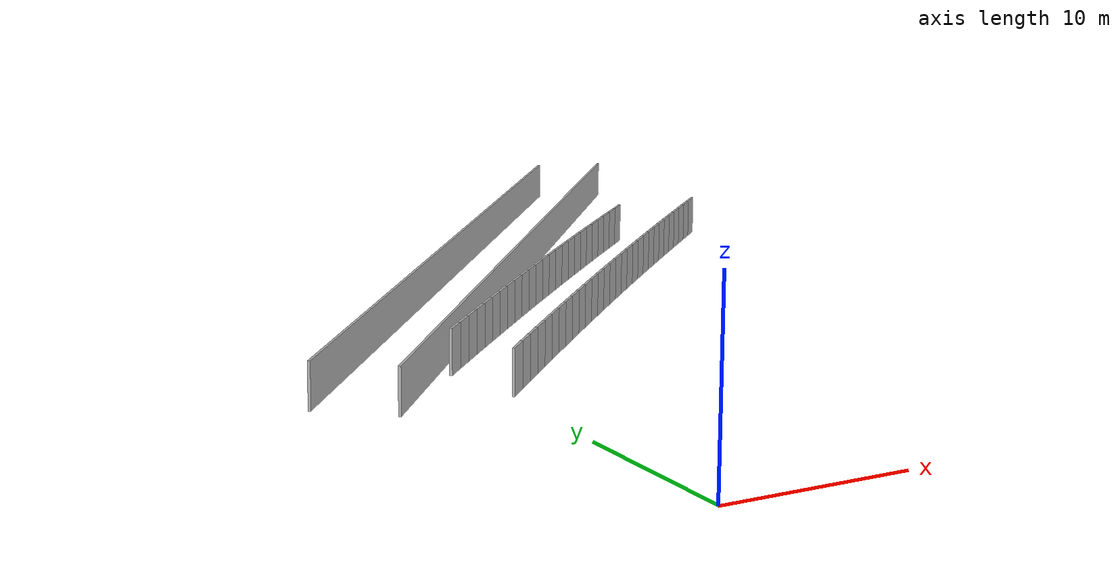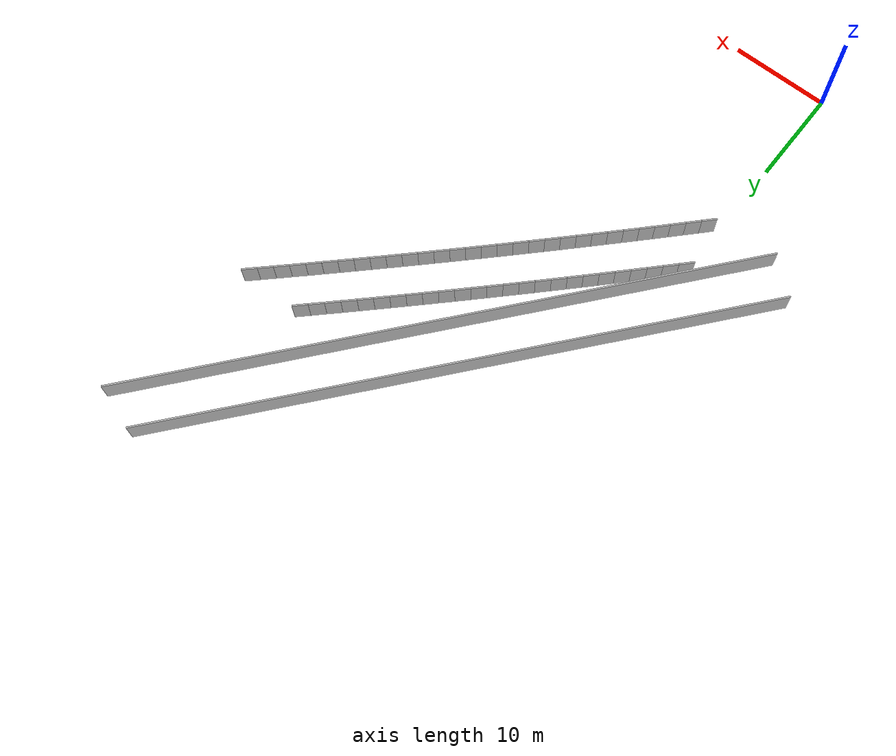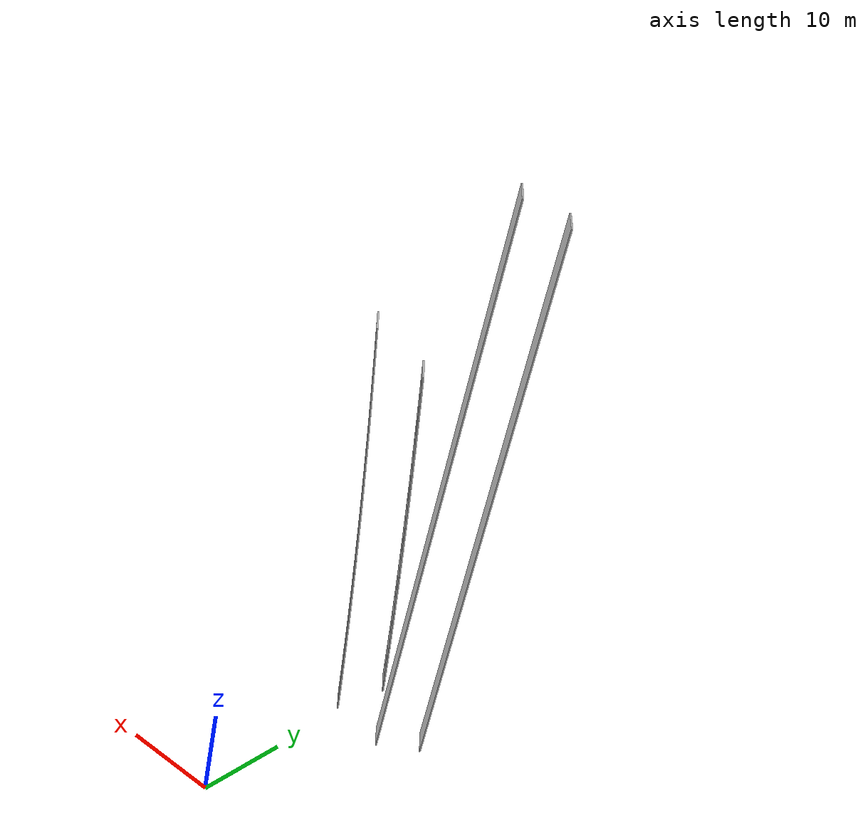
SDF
<?xml version="1.0" ?>
<sdf version="1.6">
  <model name="sps_1041">
    <pose frame="">0 0 0 0 -0 0</pose>
    <static>1</static>
    <self_collide>0</self_collide>
    <allow_auto_disable>0</allow_auto_disable>
    <link name="Wall216">
      <kinematic>0</kinematic>
      <gravity>1</gravity>
      <self_collide>0</self_collide>
      <collision name="collision">
        <geometry>
          <box>
            <size>61.3717 0.15 2.5</size>
          </box>
        </geometry>
        <pose frame="">0 0 0 0 -0 0</pose>
      </collision>
      <visual name="visual">
        <geometry>
          <box>
            <size>61.3717 0.15 2.5</size>
          </box>
        </geometry>
        <pose frame="">0 0 0 0 -0 0</pose>
        <cast_shadows>1</cast_shadows>
        <transparency>0.0</transparency>
      </visual>
      <pose frame="">10.3062 44.3538 1.25 0 0 -2.26727</pose>
    </link>
    <link name="Wall218">
      <kinematic>0</kinematic>
      <gravity>1</gravity>
      <self_collide>0</self_collide>
      <collision name="collision">
        <geometry>
          <box>
            <size>63.1801 0.15 2.5</size>
          </box>
        </geometry>
        <pose frame="">0 0 0 0 -0 0</pose>
      </collision>
      <visual name="visual">
        <geometry>
          <box>
            <size>63.1801 0.15 2.5</size>
          </box>
        </geometry>
        <pose frame="">0 0 0 0 -0 0</pose>
        <cast_shadows>1</cast_shadows>
        <transparency>0.0</transparency>
      </visual>
      <pose frame="">14.2568 42.1703 1.25 0 -0 0.876505</pose>
    </link>
    <link name="Wall3343">
      <kinematic>0</kinematic>
      <gravity>1</gravity>
      <self_collide>0</self_collide>
      <collision name="collision">
        <geometry>
          <box>
            <size>1.49649 0.15 2.5</size>
          </box>
        </geometry>
        <pose frame="">0 0 0 0 -0 0</pose>
      </collision>
      <visual name="visual">
        <geometry>
          <box>
            <size>1.49649 0.15 2.5</size>
          </box>
        </geometry>
        <pose frame="">0 0 0 0 -0 0</pose>
        <cast_shadows>1</cast_shadows>
        <transparency>0.0</transparency>
      </visual>
      <pose frame="">31.7778 49.5212 1.25 0 0 -2.38189</pose>
    </link>
    <link name="Wall3344">
      <kinematic>0</kinematic>
      <gravity>1</gravity>
      <self_collide>0</self_collide>
      <collision name="collision">
        <geometry>
          <box>
            <size>1.49651 0.15 2.5</size>
          </box>
        </geometry>
        <pose frame="">0 0 0 0 -0 0</pose>
      </collision>
      <visual name="visual">
        <geometry>
          <box>
            <size>1.49651 0.15 2.5</size>
          </box>
        </geometry>
        <pose frame="">0 0 0 0 -0 0</pose>
        <cast_shadows>1</cast_shadows>
        <transparency>0.0</transparency>
      </visual>
      <pose frame="">30.6937 48.4896 1.25 0 0 -2.3801</pose>
    </link>
    <link name="Wall3345">
      <kinematic>0</kinematic>
      <gravity>1</gravity>
      <self_collide>0</self_collide>
      <collision name="collision">
        <geometry>
          <box>
            <size>1.49659 0.15 2.5</size>
          </box>
        </geometry>
        <pose frame="">0 0 0 0 -0 0</pose>
      </collision>
      <visual name="visual">
        <geometry>
          <box>
            <size>1.49659 0.15 2.5</size>
          </box>
        </geometry>
        <pose frame="">0 0 0 0 -0 0</pose>
        <cast_shadows>1</cast_shadows>
        <transparency>0.0</transparency>
      </visual>
      <pose frame="">29.6112 47.4562 1.25 0 0 -2.37869</pose>
    </link>
    <link name="Wall3346">
      <kinematic>0</kinematic>
      <gravity>1</gravity>
      <self_collide>0</self_collide>
      <collision name="collision">
        <geometry>
          <box>
            <size>1.49645 0.15 2.5</size>
          </box>
        </geometry>
        <pose frame="">0 0 0 0 -0 0</pose>
      </collision>
      <visual name="visual">
        <geometry>
          <box>
            <size>1.49645 0.15 2.5</size>
          </box>
        </geometry>
        <pose frame="">0 0 0 0 -0 0</pose>
        <cast_shadows>1</cast_shadows>
        <transparency>0.0</transparency>
      </visual>
      <pose frame="">28.5304 46.4211 1.25 0 0 -2.3769</pose>
    </link>
    <link name="Wall3347">
      <kinematic>0</kinematic>
      <gravity>1</gravity>
      <self_collide>0</self_collide>
      <collision name="collision">
        <geometry>
          <box>
            <size>1.49649 0.15 2.5</size>
          </box>
        </geometry>
        <pose frame="">0 0 0 0 -0 0</pose>
      </collision>
      <visual name="visual">
        <geometry>
          <box>
            <size>1.49649 0.15 2.5</size>
          </box>
        </geometry>
        <pose frame="">0 0 0 0 -0 0</pose>
        <cast_shadows>1</cast_shadows>
        <transparency>0.0</transparency>
      </visual>
      <pose frame="">27.4513 45.3843 1.25 0 0 -2.37546</pose>
    </link>
    <link name="Wall3348">
      <kinematic>0</kinematic>
      <gravity>1</gravity>
      <self_collide>0</self_collide>
      <collision name="collision">
        <geometry>
          <box>
            <size>1.49666 0.15 2.5</size>
          </box>
        </geometry>
        <pose frame="">0 0 0 0 -0 0</pose>
      </collision>
      <visual name="visual">
        <geometry>
          <box>
            <size>1.49666 0.15 2.5</size>
          </box>
        </geometry>
        <pose frame="">0 0 0 0 -0 0</pose>
        <cast_shadows>1</cast_shadows>
        <transparency>0.0</transparency>
      </visual>
      <pose frame="">26.3736 44.3458 1.25 0 0 -2.37387</pose>
    </link>
    <link name="Wall3349">
      <kinematic>0</kinematic>
      <gravity>1</gravity>
      <self_collide>0</self_collide>
      <collision name="collision">
        <geometry>
          <box>
            <size>1.49636 0.15 2.5</size>
          </box>
        </geometry>
        <pose frame="">0 0 0 0 -0 0</pose>
      </collision>
      <visual name="visual">
        <geometry>
          <box>
            <size>1.49636 0.15 2.5</size>
          </box>
        </geometry>
        <pose frame="">0 0 0 0 -0 0</pose>
        <cast_shadows>1</cast_shadows>
        <transparency>0.0</transparency>
      </visual>
      <pose frame="">25.2978 43.3056 1.25 0 0 -2.37226</pose>
    </link>
    <link name="Wall3350">
      <kinematic>0</kinematic>
      <gravity>1</gravity>
      <self_collide>0</self_collide>
      <collision name="collision">
        <geometry>
          <box>
            <size>1.49659 0.15 2.5</size>
          </box>
        </geometry>
        <pose frame="">0 0 0 0 -0 0</pose>
      </collision>
      <visual name="visual">
        <geometry>
          <box>
            <size>1.49659 0.15 2.5</size>
          </box>
        </geometry>
        <pose frame="">0 0 0 0 -0 0</pose>
        <cast_shadows>1</cast_shadows>
        <transparency>0.0</transparency>
      </visual>
      <pose frame="">24.2236 42.2637 1.25 0 0 -2.37064</pose>
    </link>
    <link name="Wall3351">
      <kinematic>0</kinematic>
      <gravity>1</gravity>
      <self_collide>0</self_collide>
      <collision name="collision">
        <geometry>
          <box>
            <size>1.49647 0.15 2.5</size>
          </box>
        </geometry>
        <pose frame="">0 0 0 0 -0 0</pose>
      </collision>
      <visual name="visual">
        <geometry>
          <box>
            <size>1.49647 0.15 2.5</size>
          </box>
        </geometry>
        <pose frame="">0 0 0 0 -0 0</pose>
        <cast_shadows>1</cast_shadows>
        <transparency>0.0</transparency>
      </visual>
      <pose frame="">23.151 41.2201 1.25 0 0 -2.36914</pose>
    </link>
    <link name="Wall3352">
      <kinematic>0</kinematic>
      <gravity>1</gravity>
      <self_collide>0</self_collide>
      <collision name="collision">
        <geometry>
          <box>
            <size>1.49648 0.15 2.5</size>
          </box>
        </geometry>
        <pose frame="">0 0 0 0 -0 0</pose>
      </collision>
      <visual name="visual">
        <geometry>
          <box>
            <size>1.49648 0.15 2.5</size>
          </box>
        </geometry>
        <pose frame="">0 0 0 0 -0 0</pose>
        <cast_shadows>1</cast_shadows>
        <transparency>0.0</transparency>
      </visual>
      <pose frame="">22.0801 40.1748 1.25 0 0 -2.36744</pose>
    </link>
    <link name="Wall3353">
      <kinematic>0</kinematic>
      <gravity>1</gravity>
      <self_collide>0</self_collide>
      <collision name="collision">
        <geometry>
          <box>
            <size>1.49646 0.15 2.5</size>
          </box>
        </geometry>
        <pose frame="">0 0 0 0 -0 0</pose>
      </collision>
      <visual name="visual">
        <geometry>
          <box>
            <size>1.49646 0.15 2.5</size>
          </box>
        </geometry>
        <pose frame="">0 0 0 0 -0 0</pose>
        <cast_shadows>1</cast_shadows>
        <transparency>0.0</transparency>
      </visual>
      <pose frame="">21.0109 39.1278 1.25 0 0 -2.36594</pose>
    </link>
    <link name="Wall3354">
      <kinematic>0</kinematic>
      <gravity>1</gravity>
      <self_collide>0</self_collide>
      <collision name="collision">
        <geometry>
          <box>
            <size>1.49657 0.15 2.5</size>
          </box>
        </geometry>
        <pose frame="">0 0 0 0 -0 0</pose>
      </collision>
      <visual name="visual">
        <geometry>
          <box>
            <size>1.49657 0.15 2.5</size>
          </box>
        </geometry>
        <pose frame="">0 0 0 0 -0 0</pose>
        <cast_shadows>1</cast_shadows>
        <transparency>0.0</transparency>
      </visual>
      <pose frame="">19.9433 38.0791 1.25 0 0 -2.3643</pose>
    </link>
    <link name="Wall3355">
      <kinematic>0</kinematic>
      <gravity>1</gravity>
      <self_collide>0</self_collide>
      <collision name="collision">
        <geometry>
          <box>
            <size>1.49659 0.15 2.5</size>
          </box>
        </geometry>
        <pose frame="">0 0 0 0 -0 0</pose>
      </collision>
      <visual name="visual">
        <geometry>
          <box>
            <size>1.49659 0.15 2.5</size>
          </box>
        </geometry>
        <pose frame="">0 0 0 0 -0 0</pose>
        <cast_shadows>1</cast_shadows>
        <transparency>0.0</transparency>
      </visual>
      <pose frame="">18.8773 37.0287 1.25 0 0 -2.36283</pose>
    </link>
    <link name="Wall3356">
      <kinematic>0</kinematic>
      <gravity>1</gravity>
      <self_collide>0</self_collide>
      <collision name="collision">
        <geometry>
          <box>
            <size>1.49649 0.15 2.5</size>
          </box>
        </geometry>
        <pose frame="">0 0 0 0 -0 0</pose>
      </collision>
      <visual name="visual">
        <geometry>
          <box>
            <size>1.49649 0.15 2.5</size>
          </box>
        </geometry>
        <pose frame="">0 0 0 0 -0 0</pose>
        <cast_shadows>1</cast_shadows>
        <transparency>0.0</transparency>
      </visual>
      <pose frame="">17.8129 35.9766 1.25 0 0 -2.3611</pose>
    </link>
    <link name="Wall3357">
      <kinematic>0</kinematic>
      <gravity>1</gravity>
      <self_collide>0</self_collide>
      <collision name="collision">
        <geometry>
          <box>
            <size>1.49653 0.15 2.5</size>
          </box>
        </geometry>
        <pose frame="">0 0 0 0 -0 0</pose>
      </collision>
      <visual name="visual">
        <geometry>
          <box>
            <size>1.49653 0.15 2.5</size>
          </box>
        </geometry>
        <pose frame="">0 0 0 0 -0 0</pose>
        <cast_shadows>1</cast_shadows>
        <transparency>0.0</transparency>
      </visual>
      <pose frame="">16.7504 34.9228 1.25 0 0 -2.35963</pose>
    </link>
    <link name="Wall3358">
      <kinematic>0</kinematic>
      <gravity>1</gravity>
      <self_collide>0</self_collide>
      <collision name="collision">
        <geometry>
          <box>
            <size>1.49639 0.15 2.5</size>
          </box>
        </geometry>
        <pose frame="">0 0 0 0 -0 0</pose>
      </collision>
      <visual name="visual">
        <geometry>
          <box>
            <size>1.49639 0.15 2.5</size>
          </box>
        </geometry>
        <pose frame="">0 0 0 0 -0 0</pose>
        <cast_shadows>1</cast_shadows>
        <transparency>0.0</transparency>
      </visual>
      <pose frame="">15.6894 33.8674 1.25 0 0 -2.35798</pose>
    </link>
    <link name="Wall3359">
      <kinematic>0</kinematic>
      <gravity>1</gravity>
      <self_collide>0</self_collide>
      <collision name="collision">
        <geometry>
          <box>
            <size>1.49656 0.15 2.5</size>
          </box>
        </geometry>
        <pose frame="">0 0 0 0 -0 0</pose>
      </collision>
      <visual name="visual">
        <geometry>
          <box>
            <size>1.49656 0.15 2.5</size>
          </box>
        </geometry>
        <pose frame="">0 0 0 0 -0 0</pose>
        <cast_shadows>1</cast_shadows>
        <transparency>0.0</transparency>
      </visual>
      <pose frame="">14.6302 32.8103 1.25 0 0 -2.35637</pose>
    </link>
    <link name="Wall3360">
      <kinematic>0</kinematic>
      <gravity>1</gravity>
      <self_collide>0</self_collide>
      <collision name="collision">
        <geometry>
          <box>
            <size>1.49635 0.15 2.5</size>
          </box>
        </geometry>
        <pose frame="">0 0 0 0 -0 0</pose>
      </collision>
      <visual name="visual">
        <geometry>
          <box>
            <size>1.49635 0.15 2.5</size>
          </box>
        </geometry>
        <pose frame="">0 0 0 0 -0 0</pose>
        <cast_shadows>1</cast_shadows>
        <transparency>0.0</transparency>
      </visual>
      <pose frame="">13.5727 31.7516 1.25 0 0 -2.35495</pose>
    </link>
    <link name="Wall3361">
      <kinematic>0</kinematic>
      <gravity>1</gravity>
      <self_collide>0</self_collide>
      <collision name="collision">
        <geometry>
          <box>
            <size>1.4967 0.15 2.5</size>
          </box>
        </geometry>
        <pose frame="">0 0 0 0 -0 0</pose>
      </collision>
      <visual name="visual">
        <geometry>
          <box>
            <size>1.4967 0.15 2.5</size>
          </box>
        </geometry>
        <pose frame="">0 0 0 0 -0 0</pose>
        <cast_shadows>1</cast_shadows>
        <transparency>0.0</transparency>
      </visual>
      <pose frame="">12.5167 30.6912 1.25 0 0 -2.35328</pose>
    </link>
    <link name="Wall3362">
      <kinematic>0</kinematic>
      <gravity>1</gravity>
      <self_collide>0</self_collide>
      <collision name="collision">
        <geometry>
          <box>
            <size>1.4964 0.15 2.5</size>
          </box>
        </geometry>
        <pose frame="">0 0 0 0 -0 0</pose>
      </collision>
      <visual name="visual">
        <geometry>
          <box>
            <size>1.4964 0.15 2.5</size>
          </box>
        </geometry>
        <pose frame="">0 0 0 0 -0 0</pose>
        <cast_shadows>1</cast_shadows>
        <transparency>0.0</transparency>
      </visual>
      <pose frame="">11.4623 29.6291 1.25 0 0 -2.35175</pose>
    </link>
    <link name="Wall3363">
      <kinematic>0</kinematic>
      <gravity>1</gravity>
      <self_collide>0</self_collide>
      <collision name="collision">
        <geometry>
          <box>
            <size>1.49668 0.15 2.5</size>
          </box>
        </geometry>
        <pose frame="">0 0 0 0 -0 0</pose>
      </collision>
      <visual name="visual">
        <geometry>
          <box>
            <size>1.49668 0.15 2.5</size>
          </box>
        </geometry>
        <pose frame="">0 0 0 0 -0 0</pose>
        <cast_shadows>1</cast_shadows>
        <transparency>0.0</transparency>
      </visual>
      <pose frame="">10.4098 28.5652 1.25 0 0 -2.34985</pose>
    </link>
    <link name="Wall3364">
      <kinematic>0</kinematic>
      <gravity>1</gravity>
      <self_collide>0</self_collide>
      <collision name="collision">
        <geometry>
          <box>
            <size>1.49652 0.15 2.5</size>
          </box>
        </geometry>
        <pose frame="">0 0 0 0 -0 0</pose>
      </collision>
      <visual name="visual">
        <geometry>
          <box>
            <size>1.49652 0.15 2.5</size>
          </box>
        </geometry>
        <pose frame="">0 0 0 0 -0 0</pose>
        <cast_shadows>1</cast_shadows>
        <transparency>0.0</transparency>
      </visual>
      <pose frame="">9.35906 27.4995 1.25 0 0 -2.34847</pose>
    </link>
    <link name="Wall3365">
      <kinematic>0</kinematic>
      <gravity>1</gravity>
      <self_collide>0</self_collide>
      <collision name="collision">
        <geometry>
          <box>
            <size>1.49662 0.15 2.5</size>
          </box>
        </geometry>
        <pose frame="">0 0 0 0 -0 0</pose>
      </collision>
      <visual name="visual">
        <geometry>
          <box>
            <size>1.49662 0.15 2.5</size>
          </box>
        </geometry>
        <pose frame="">0 0 0 0 -0 0</pose>
        <cast_shadows>1</cast_shadows>
        <transparency>0.0</transparency>
      </visual>
      <pose frame="">8.30987 26.4323 1.25 0 0 -2.34691</pose>
    </link>
    <link name="Wall3366">
      <kinematic>0</kinematic>
      <gravity>1</gravity>
      <self_collide>0</self_collide>
      <collision name="collision">
        <geometry>
          <box>
            <size>1.49634 0.15 2.5</size>
          </box>
        </geometry>
        <pose frame="">0 0 0 0 -0 0</pose>
      </collision>
      <visual name="visual">
        <geometry>
          <box>
            <size>1.49634 0.15 2.5</size>
          </box>
        </geometry>
        <pose frame="">0 0 0 0 -0 0</pose>
        <cast_shadows>1</cast_shadows>
        <transparency>0.0</transparency>
      </visual>
      <pose frame="">7.26235 25.3636 1.25 0 0 -2.34544</pose>
    </link>
    <link name="Wall3367">
      <kinematic>0</kinematic>
      <gravity>1</gravity>
      <self_collide>0</self_collide>
      <collision name="collision">
        <geometry>
          <box>
            <size>1.49646 0.15 2.5</size>
          </box>
        </geometry>
        <pose frame="">0 0 0 0 -0 0</pose>
      </collision>
      <visual name="visual">
        <geometry>
          <box>
            <size>1.49646 0.15 2.5</size>
          </box>
        </geometry>
        <pose frame="">0 0 0 0 -0 0</pose>
        <cast_shadows>1</cast_shadows>
        <transparency>0.0</transparency>
      </visual>
      <pose frame="">6.21654 24.2933 1.25 0 0 -2.34382</pose>
    </link>
    <link name="Wall3368">
      <kinematic>0</kinematic>
      <gravity>1</gravity>
      <self_collide>0</self_collide>
      <collision name="collision">
        <geometry>
          <box>
            <size>1.49654 0.15 2.5</size>
          </box>
        </geometry>
        <pose frame="">0 0 0 0 -0 0</pose>
      </collision>
      <visual name="visual">
        <geometry>
          <box>
            <size>1.49654 0.15 2.5</size>
          </box>
        </geometry>
        <pose frame="">0 0 0 0 -0 0</pose>
        <cast_shadows>1</cast_shadows>
        <transparency>0.0</transparency>
      </visual>
      <pose frame="">5.17245 23.2212 1.25 0 0 -2.34212</pose>
    </link>
    <link name="Wall3369">
      <kinematic>0</kinematic>
      <gravity>1</gravity>
      <self_collide>0</self_collide>
      <collision name="collision">
        <geometry>
          <box>
            <size>1.49627 0.15 2.5</size>
          </box>
        </geometry>
        <pose frame="">0 0 0 0 -0 0</pose>
      </collision>
      <visual name="visual">
        <geometry>
          <box>
            <size>1.49627 0.15 2.5</size>
          </box>
        </geometry>
        <pose frame="">0 0 0 0 -0 0</pose>
        <cast_shadows>1</cast_shadows>
        <transparency>0.0</transparency>
      </visual>
      <pose frame="">4.13015 22.1475 1.25 0 0 -2.34059</pose>
    </link>
    <link name="Wall3370">
      <kinematic>0</kinematic>
      <gravity>1</gravity>
      <self_collide>0</self_collide>
      <collision name="collision">
        <geometry>
          <box>
            <size>1.49648 0.15 2.5</size>
          </box>
        </geometry>
        <pose frame="">0 0 0 0 -0 0</pose>
      </collision>
      <visual name="visual">
        <geometry>
          <box>
            <size>1.49648 0.15 2.5</size>
          </box>
        </geometry>
        <pose frame="">0 0 0 0 -0 0</pose>
        <cast_shadows>1</cast_shadows>
        <transparency>0.0</transparency>
      </visual>
      <pose frame="">3.08956 21.0722 1.25 0 0 -2.33898</pose>
    </link>
    <link name="Wall3371">
      <kinematic>0</kinematic>
      <gravity>1</gravity>
      <self_collide>0</self_collide>
      <collision name="collision">
        <geometry>
          <box>
            <size>1.49665 0.15 2.5</size>
          </box>
        </geometry>
        <pose frame="">0 0 0 0 -0 0</pose>
      </collision>
      <visual name="visual">
        <geometry>
          <box>
            <size>1.49665 0.15 2.5</size>
          </box>
        </geometry>
        <pose frame="">0 0 0 0 -0 0</pose>
        <cast_shadows>1</cast_shadows>
        <transparency>0.0</transparency>
      </visual>
      <pose frame="">2.05056 19.9951 1.25 0 0 -2.33739</pose>
    </link>
    <link name="Wall3372">
      <kinematic>0</kinematic>
      <gravity>1</gravity>
      <self_collide>0</self_collide>
      <collision name="collision">
        <geometry>
          <box>
            <size>1.49653 0.15 2.5</size>
          </box>
        </geometry>
        <pose frame="">0 0 0 0 -0 0</pose>
      </collision>
      <visual name="visual">
        <geometry>
          <box>
            <size>1.49653 0.15 2.5</size>
          </box>
        </geometry>
        <pose frame="">0 0 0 0 -0 0</pose>
        <cast_shadows>1</cast_shadows>
        <transparency>0.0</transparency>
      </visual>
      <pose frame="">1.01327 18.9163 1.25 0 0 -2.33578</pose>
    </link>
    <link name="Wall5957">
      <kinematic>0</kinematic>
      <gravity>1</gravity>
      <self_collide>0</self_collide>
      <collision name="collision">
        <geometry>
          <box>
            <size>1.5031 0.15 2.5</size>
          </box>
        </geometry>
        <pose frame="">0 0 0 0 -0 0</pose>
      </collision>
      <visual name="visual">
        <geometry>
          <box>
            <size>1.5031 0.15 2.5</size>
          </box>
        </geometry>
        <pose frame="">0 0 0 0 -0 0</pose>
        <cast_shadows>1</cast_shadows>
        <transparency>0.0</transparency>
      </visual>
      <pose frame="">25.6543 49.3987 1.25 0 0 -2.3771</pose>
    </link>
    <link name="Wall5958">
      <kinematic>0</kinematic>
      <gravity>1</gravity>
      <self_collide>0</self_collide>
      <collision name="collision">
        <geometry>
          <box>
            <size>1.50301 0.15 2.5</size>
          </box>
        </geometry>
        <pose frame="">0 0 0 0 -0 0</pose>
      </collision>
      <visual name="visual">
        <geometry>
          <box>
            <size>1.50301 0.15 2.5</size>
          </box>
        </geometry>
        <pose frame="">0 0 0 0 -0 0</pose>
        <cast_shadows>1</cast_shadows>
        <transparency>0.0</transparency>
      </visual>
      <pose frame="">24.5703 48.3574 1.25 0 0 -2.37541</pose>
    </link>
    <link name="Wall5959">
      <kinematic>0</kinematic>
      <gravity>1</gravity>
      <self_collide>0</self_collide>
      <collision name="collision">
        <geometry>
          <box>
            <size>1.50327 0.15 2.5</size>
          </box>
        </geometry>
        <pose frame="">0 0 0 0 -0 0</pose>
      </collision>
      <visual name="visual">
        <geometry>
          <box>
            <size>1.50327 0.15 2.5</size>
          </box>
        </geometry>
        <pose frame="">0 0 0 0 -0 0</pose>
        <cast_shadows>1</cast_shadows>
        <transparency>0.0</transparency>
      </visual>
      <pose frame="">23.488 47.3143 1.25 0 0 -2.37388</pose>
    </link>
    <link name="Wall5960">
      <kinematic>0</kinematic>
      <gravity>1</gravity>
      <self_collide>0</self_collide>
      <collision name="collision">
        <geometry>
          <box>
            <size>1.50306 0.15 2.5</size>
          </box>
        </geometry>
        <pose frame="">0 0 0 0 -0 0</pose>
      </collision>
      <visual name="visual">
        <geometry>
          <box>
            <size>1.50306 0.15 2.5</size>
          </box>
        </geometry>
        <pose frame="">0 0 0 0 -0 0</pose>
        <cast_shadows>1</cast_shadows>
        <transparency>0.0</transparency>
      </visual>
      <pose frame="">22.4073 46.2695 1.25 0 0 -2.37227</pose>
    </link>
    <link name="Wall5961">
      <kinematic>0</kinematic>
      <gravity>1</gravity>
      <self_collide>0</self_collide>
      <collision name="collision">
        <geometry>
          <box>
            <size>1.50306 0.15 2.5</size>
          </box>
        </geometry>
        <pose frame="">0 0 0 0 -0 0</pose>
      </collision>
      <visual name="visual">
        <geometry>
          <box>
            <size>1.50306 0.15 2.5</size>
          </box>
        </geometry>
        <pose frame="">0 0 0 0 -0 0</pose>
        <cast_shadows>1</cast_shadows>
        <transparency>0.0</transparency>
      </visual>
      <pose frame="">21.3285 45.223 1.25 0 0 -2.37058</pose>
    </link>
    <link name="Wall5962">
      <kinematic>0</kinematic>
      <gravity>1</gravity>
      <self_collide>0</self_collide>
      <collision name="collision">
        <geometry>
          <box>
            <size>1.50303 0.15 2.5</size>
          </box>
        </geometry>
        <pose frame="">0 0 0 0 -0 0</pose>
      </collision>
      <visual name="visual">
        <geometry>
          <box>
            <size>1.50303 0.15 2.5</size>
          </box>
        </geometry>
        <pose frame="">0 0 0 0 -0 0</pose>
        <cast_shadows>1</cast_shadows>
        <transparency>0.0</transparency>
      </visual>
      <pose frame="">20.2512 44.1748 1.25 0 0 -2.36909</pose>
    </link>
    <link name="Wall5963">
      <kinematic>0</kinematic>
      <gravity>1</gravity>
      <self_collide>0</self_collide>
      <collision name="collision">
        <geometry>
          <box>
            <size>1.50309 0.15 2.5</size>
          </box>
        </geometry>
        <pose frame="">0 0 0 0 -0 0</pose>
      </collision>
      <visual name="visual">
        <geometry>
          <box>
            <size>1.50309 0.15 2.5</size>
          </box>
        </geometry>
        <pose frame="">0 0 0 0 -0 0</pose>
        <cast_shadows>1</cast_shadows>
        <transparency>0.0</transparency>
      </visual>
      <pose frame="">19.1757 43.1249 1.25 0 0 -2.36748</pose>
    </link>
    <link name="Wall5964">
      <kinematic>0</kinematic>
      <gravity>1</gravity>
      <self_collide>0</self_collide>
      <collision name="collision">
        <geometry>
          <box>
            <size>1.50311 0.15 2.5</size>
          </box>
        </geometry>
        <pose frame="">0 0 0 0 -0 0</pose>
      </collision>
      <visual name="visual">
        <geometry>
          <box>
            <size>1.50311 0.15 2.5</size>
          </box>
        </geometry>
        <pose frame="">0 0 0 0 -0 0</pose>
        <cast_shadows>1</cast_shadows>
        <transparency>0.0</transparency>
      </visual>
      <pose frame="">18.1017 42.0733 1.25 0 0 -2.36596</pose>
    </link>
    <link name="Wall5965">
      <kinematic>0</kinematic>
      <gravity>1</gravity>
      <self_collide>0</self_collide>
      <collision name="collision">
        <geometry>
          <box>
            <size>1.50308 0.15 2.5</size>
          </box>
        </geometry>
        <pose frame="">0 0 0 0 -0 0</pose>
      </collision>
      <visual name="visual">
        <geometry>
          <box>
            <size>1.50308 0.15 2.5</size>
          </box>
        </geometry>
        <pose frame="">0 0 0 0 -0 0</pose>
        <cast_shadows>1</cast_shadows>
        <transparency>0.0</transparency>
      </visual>
      <pose frame="">17.0294 41.02 1.25 0 0 -2.36429</pose>
    </link>
    <link name="Wall5966">
      <kinematic>0</kinematic>
      <gravity>1</gravity>
      <self_collide>0</self_collide>
      <collision name="collision">
        <geometry>
          <box>
            <size>1.50307 0.15 2.5</size>
          </box>
        </geometry>
        <pose frame="">0 0 0 0 -0 0</pose>
      </collision>
      <visual name="visual">
        <geometry>
          <box>
            <size>1.50307 0.15 2.5</size>
          </box>
        </geometry>
        <pose frame="">0 0 0 0 -0 0</pose>
        <cast_shadows>1</cast_shadows>
        <transparency>0.0</transparency>
      </visual>
      <pose frame="">15.9588 39.965 1.25 0 0 -2.3628</pose>
    </link>
    <link name="Wall5967">
      <kinematic>0</kinematic>
      <gravity>1</gravity>
      <self_collide>0</self_collide>
      <collision name="collision">
        <geometry>
          <box>
            <size>1.50318 0.15 2.5</size>
          </box>
        </geometry>
        <pose frame="">0 0 0 0 -0 0</pose>
      </collision>
      <visual name="visual">
        <geometry>
          <box>
            <size>1.50318 0.15 2.5</size>
          </box>
        </geometry>
        <pose frame="">0 0 0 0 -0 0</pose>
        <cast_shadows>1</cast_shadows>
        <transparency>0.0</transparency>
      </visual>
      <pose frame="">14.8898 38.9083 1.25 0 0 -2.36116</pose>
    </link>
    <link name="Wall5968">
      <kinematic>0</kinematic>
      <gravity>1</gravity>
      <self_collide>0</self_collide>
      <collision name="collision">
        <geometry>
          <box>
            <size>1.50304 0.15 2.5</size>
          </box>
        </geometry>
        <pose frame="">0 0 0 0 -0 0</pose>
      </collision>
      <visual name="visual">
        <geometry>
          <box>
            <size>1.50304 0.15 2.5</size>
          </box>
        </geometry>
        <pose frame="">0 0 0 0 -0 0</pose>
        <cast_shadows>1</cast_shadows>
        <transparency>0.0</transparency>
      </visual>
      <pose frame="">13.8225 37.8499 1.25 0 0 -2.35958</pose>
    </link>
    <link name="Wall5969">
      <kinematic>0</kinematic>
      <gravity>1</gravity>
      <self_collide>0</self_collide>
      <collision name="collision">
        <geometry>
          <box>
            <size>1.50317 0.15 2.5</size>
          </box>
        </geometry>
        <pose frame="">0 0 0 0 -0 0</pose>
      </collision>
      <visual name="visual">
        <geometry>
          <box>
            <size>1.50317 0.15 2.5</size>
          </box>
        </geometry>
        <pose frame="">0 0 0 0 -0 0</pose>
        <cast_shadows>1</cast_shadows>
        <transparency>0.0</transparency>
      </visual>
      <pose frame="">12.7569 36.7898 1.25 0 0 -2.358</pose>
    </link>
    <link name="Wall5970">
      <kinematic>0</kinematic>
      <gravity>1</gravity>
      <self_collide>0</self_collide>
      <collision name="collision">
        <geometry>
          <box>
            <size>1.50303 0.15 2.5</size>
          </box>
        </geometry>
        <pose frame="">0 0 0 0 -0 0</pose>
      </collision>
      <visual name="visual">
        <geometry>
          <box>
            <size>1.50303 0.15 2.5</size>
          </box>
        </geometry>
        <pose frame="">0 0 0 0 -0 0</pose>
        <cast_shadows>1</cast_shadows>
        <transparency>0.0</transparency>
      </visual>
      <pose frame="">11.693 35.728 1.25 0 0 -2.35637</pose>
    </link>
    <link name="Wall5971">
      <kinematic>0</kinematic>
      <gravity>1</gravity>
      <self_collide>0</self_collide>
      <collision name="collision">
        <geometry>
          <box>
            <size>1.50316 0.15 2.5</size>
          </box>
        </geometry>
        <pose frame="">0 0 0 0 -0 0</pose>
      </collision>
      <visual name="visual">
        <geometry>
          <box>
            <size>1.50316 0.15 2.5</size>
          </box>
        </geometry>
        <pose frame="">0 0 0 0 -0 0</pose>
        <cast_shadows>1</cast_shadows>
        <transparency>0.0</transparency>
      </visual>
      <pose frame="">10.6308 34.6645 1.25 0 0 -2.35479</pose>
    </link>
    <link name="Wall5972">
      <kinematic>0</kinematic>
      <gravity>1</gravity>
      <self_collide>0</self_collide>
      <collision name="collision">
        <geometry>
          <box>
            <size>1.50317 0.15 2.5</size>
          </box>
        </geometry>
        <pose frame="">0 0 0 0 -0 0</pose>
      </collision>
      <visual name="visual">
        <geometry>
          <box>
            <size>1.50317 0.15 2.5</size>
          </box>
        </geometry>
        <pose frame="">0 0 0 0 -0 0</pose>
        <cast_shadows>1</cast_shadows>
        <transparency>0.0</transparency>
      </visual>
      <pose frame="">9.57024 33.5992 1.25 0 0 -2.35312</pose>
    </link>
    <link name="Wall5973">
      <kinematic>0</kinematic>
      <gravity>1</gravity>
      <self_collide>0</self_collide>
      <collision name="collision">
        <geometry>
          <box>
            <size>1.50305 0.15 2.5</size>
          </box>
        </geometry>
        <pose frame="">0 0 0 0 -0 0</pose>
      </collision>
      <visual name="visual">
        <geometry>
          <box>
            <size>1.50305 0.15 2.5</size>
          </box>
        </geometry>
        <pose frame="">0 0 0 0 -0 0</pose>
        <cast_shadows>1</cast_shadows>
        <transparency>0.0</transparency>
      </visual>
      <pose frame="">8.51144 32.5323 1.25 0 0 -2.35166</pose>
    </link>
    <link name="Wall5974">
      <kinematic>0</kinematic>
      <gravity>1</gravity>
      <self_collide>0</self_collide>
      <collision name="collision">
        <geometry>
          <box>
            <size>1.50306 0.15 2.5</size>
          </box>
        </geometry>
        <pose frame="">0 0 0 0 -0 0</pose>
      </collision>
      <visual name="visual">
        <geometry>
          <box>
            <size>1.50306 0.15 2.5</size>
          </box>
        </geometry>
        <pose frame="">0 0 0 0 -0 0</pose>
        <cast_shadows>1</cast_shadows>
        <transparency>0.0</transparency>
      </visual>
      <pose frame="">7.45425 31.4639 1.25 0 0 -2.35016</pose>
    </link>
    <link name="Wall5975">
      <kinematic>0</kinematic>
      <gravity>1</gravity>
      <self_collide>0</self_collide>
      <collision name="collision">
        <geometry>
          <box>
            <size>1.50304 0.15 2.5</size>
          </box>
        </geometry>
        <pose frame="">0 0 0 0 -0 0</pose>
      </collision>
      <visual name="visual">
        <geometry>
          <box>
            <size>1.50304 0.15 2.5</size>
          </box>
        </geometry>
        <pose frame="">0 0 0 0 -0 0</pose>
        <cast_shadows>1</cast_shadows>
        <transparency>0.0</transparency>
      </visual>
      <pose frame="">6.39876 30.3938 1.25 0 0 -2.34847</pose>
    </link>
    <link name="Wall5976">
      <kinematic>0</kinematic>
      <gravity>1</gravity>
      <self_collide>0</self_collide>
      <collision name="collision">
        <geometry>
          <box>
            <size>1.5031 0.15 2.5</size>
          </box>
        </geometry>
        <pose frame="">0 0 0 0 -0 0</pose>
      </collision>
      <visual name="visual">
        <geometry>
          <box>
            <size>1.5031 0.15 2.5</size>
          </box>
        </geometry>
        <pose frame="">0 0 0 0 -0 0</pose>
        <cast_shadows>1</cast_shadows>
        <transparency>0.0</transparency>
      </visual>
      <pose frame="">5.34496 29.322 1.25 0 0 -2.34701</pose>
    </link>
    <link name="Wall5977">
      <kinematic>0</kinematic>
      <gravity>1</gravity>
      <self_collide>0</self_collide>
      <collision name="collision">
        <geometry>
          <box>
            <size>1.50312 0.15 2.5</size>
          </box>
        </geometry>
        <pose frame="">0 0 0 0 -0 0</pose>
      </collision>
      <visual name="visual">
        <geometry>
          <box>
            <size>1.50312 0.15 2.5</size>
          </box>
        </geometry>
        <pose frame="">0 0 0 0 -0 0</pose>
        <cast_shadows>1</cast_shadows>
        <transparency>0.0</transparency>
      </visual>
      <pose frame="">4.29284 28.2485 1.25 0 0 -2.34528</pose>
    </link>
    <link name="Wall5978">
      <kinematic>0</kinematic>
      <gravity>1</gravity>
      <self_collide>0</self_collide>
      <collision name="collision">
        <geometry>
          <box>
            <size>1.50302 0.15 2.5</size>
          </box>
        </geometry>
        <pose frame="">0 0 0 0 -0 0</pose>
      </collision>
      <visual name="visual">
        <geometry>
          <box>
            <size>1.50302 0.15 2.5</size>
          </box>
        </geometry>
        <pose frame="">0 0 0 0 -0 0</pose>
        <cast_shadows>1</cast_shadows>
        <transparency>0.0</transparency>
      </visual>
      <pose frame="">3.24255 27.1733 1.25 0 0 -2.34365</pose>
    </link>
    <link name="Wall5979">
      <kinematic>0</kinematic>
      <gravity>1</gravity>
      <self_collide>0</self_collide>
      <collision name="collision">
        <geometry>
          <box>
            <size>1.50301 0.15 2.5</size>
          </box>
        </geometry>
        <pose frame="">0 0 0 0 -0 0</pose>
      </collision>
      <visual name="visual">
        <geometry>
          <box>
            <size>1.50301 0.15 2.5</size>
          </box>
        </geometry>
        <pose frame="">0 0 0 0 -0 0</pose>
        <cast_shadows>1</cast_shadows>
        <transparency>0.0</transparency>
      </visual>
      <pose frame="">2.19396 26.0965 1.25 0 0 -2.34218</pose>
    </link>
    <link name="Wall5980">
      <kinematic>0</kinematic>
      <gravity>1</gravity>
      <self_collide>0</self_collide>
      <collision name="collision">
        <geometry>
          <box>
            <size>1.50322 0.15 2.5</size>
          </box>
        </geometry>
        <pose frame="">0 0 0 0 -0 0</pose>
      </collision>
      <visual name="visual">
        <geometry>
          <box>
            <size>1.50322 0.15 2.5</size>
          </box>
        </geometry>
        <pose frame="">0 0 0 0 -0 0</pose>
        <cast_shadows>1</cast_shadows>
        <transparency>0.0</transparency>
      </visual>
      <pose frame="">1.14696 25.018 1.25 0 0 -2.34058</pose>
    </link>
    <link name="Wall5981">
      <kinematic>0</kinematic>
      <gravity>1</gravity>
      <self_collide>0</self_collide>
      <collision name="collision">
        <geometry>
          <box>
            <size>1.50313 0.15 2.5</size>
          </box>
        </geometry>
        <pose frame="">0 0 0 0 -0 0</pose>
      </collision>
      <visual name="visual">
        <geometry>
          <box>
            <size>1.50313 0.15 2.5</size>
          </box>
        </geometry>
        <pose frame="">0 0 0 0 -0 0</pose>
        <cast_shadows>1</cast_shadows>
        <transparency>0.0</transparency>
      </visual>
      <pose frame="">0.101646 23.9378 1.25 0 0 -2.33899</pose>
    </link>
  </model>
</sdf>
